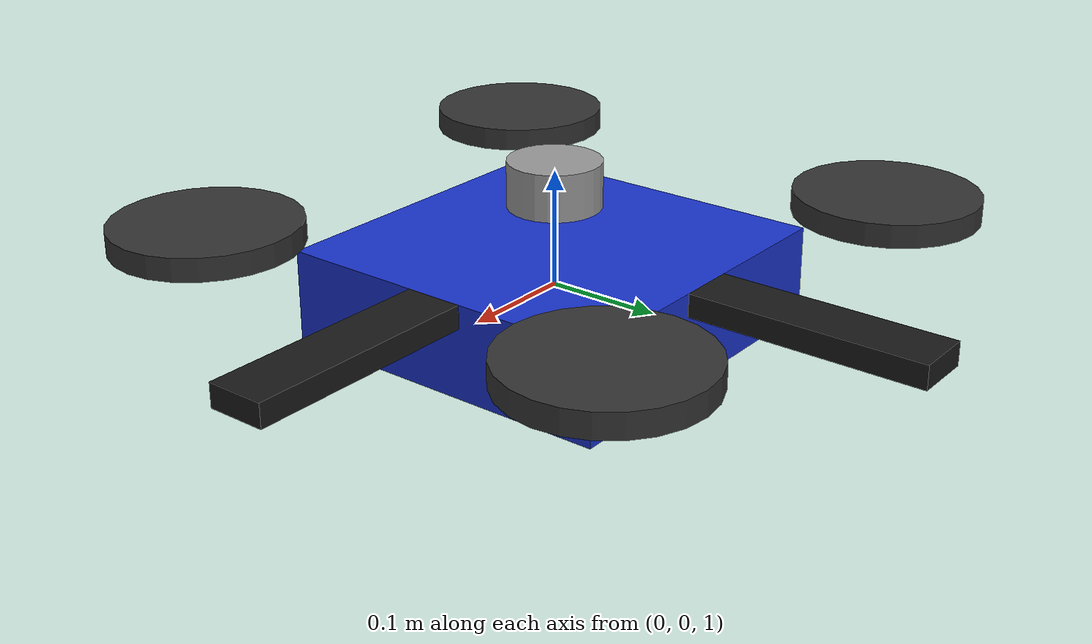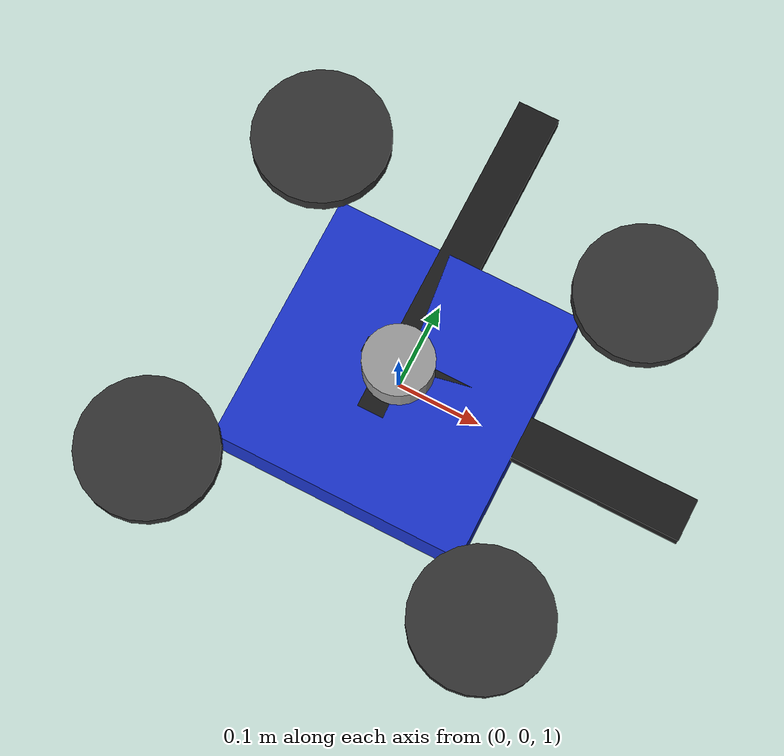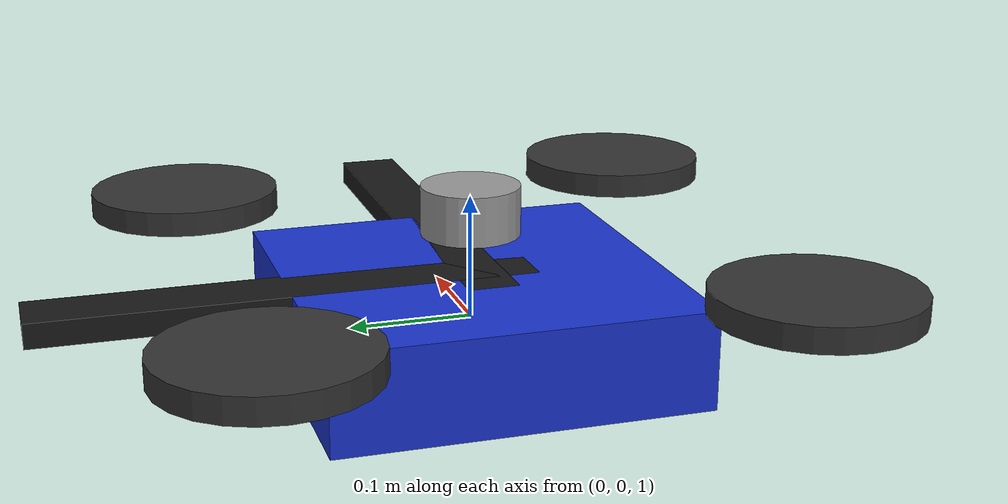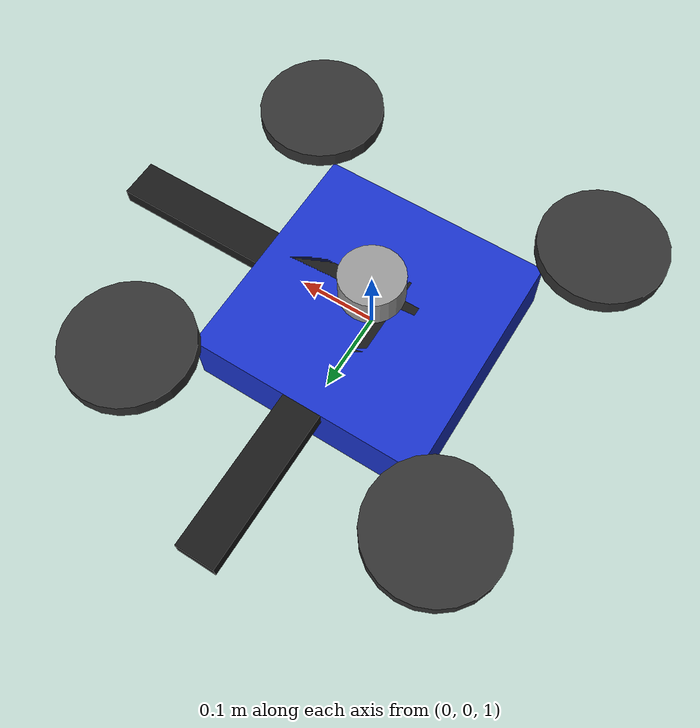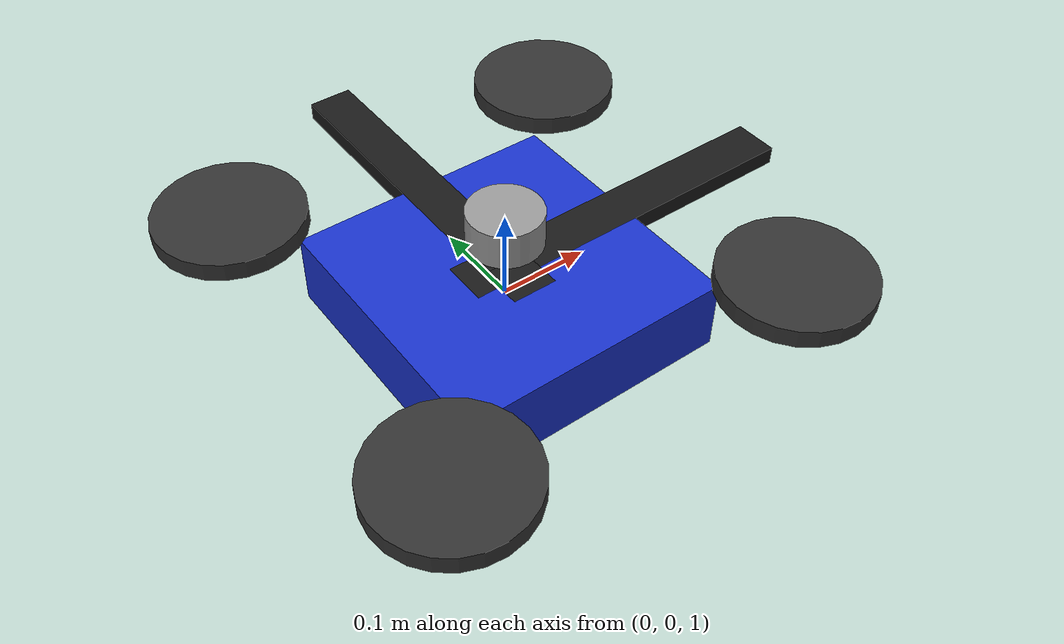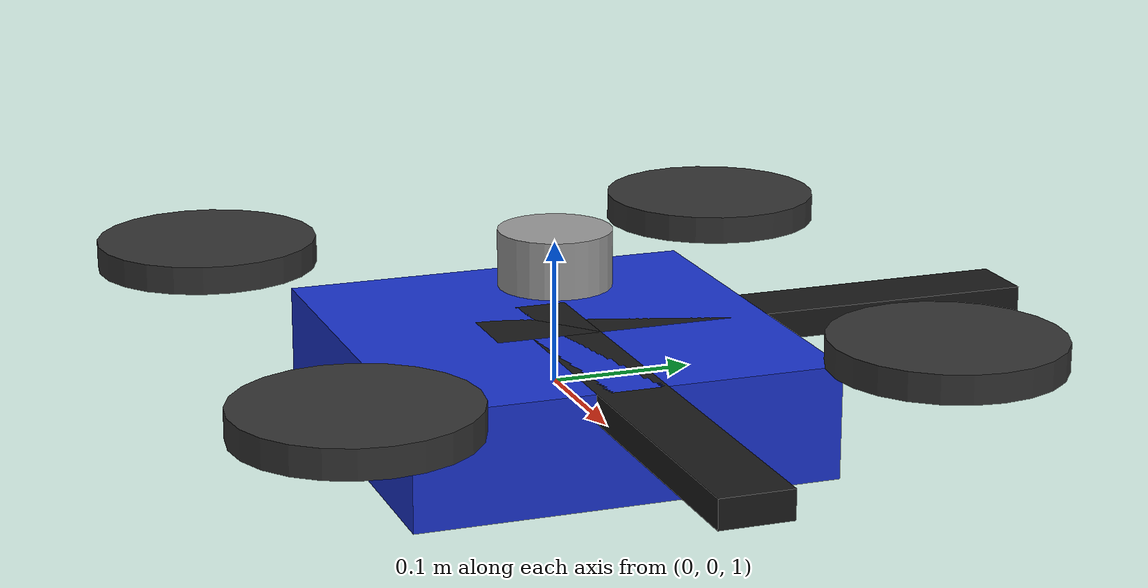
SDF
<?xml version="1.0"?>
<sdf version="1.8">
  <model name="uav">
    <pose>0 0 1 0 0 0</pose>
    <static>false</static>
    <link name="base_link">
      <gravity>false</gravity>
      <inertial>
        <mass>1.6</mass>
        <inertia>
          <ixx>0.03</ixx>
          <iyy>0.03</iyy>
          <izz>0.05</izz>
        </inertia>
      </inertial>
      <collision name="body_collision">
        <geometry>
          <box>
            <size>0.3 0.3 0.08</size>
          </box>
        </geometry>
      </collision>
      <visual name="body_visual">
        <geometry>
          <box>
            <size>0.3 0.3 0.08</size>
          </box>
        </geometry>
        <material>
          <ambient>0.1 0.2 0.8 1</ambient>
          <diffuse>0.1 0.2 0.8 1</diffuse>
        </material>
      </visual>
      <visual name="arm_front">
        <pose>0.15 0 0.03 0 0 0</pose>
        <geometry>
          <box>
            <size>0.4 0.05 0.02</size>
          </box>
        </geometry>
        <material>
          <ambient>0.1 0.1 0.1 1</ambient>
          <diffuse>0.1 0.1 0.1 1</diffuse>
        </material>
      </visual>
      <visual name="arm_side">
        <pose>0 0.15 0.03 0 0 0</pose>
        <geometry>
          <box>
            <size>0.05 0.4 0.02</size>
          </box>
        </geometry>
        <material>
          <ambient>0.1 0.1 0.1 1</ambient>
          <diffuse>0.1 0.1 0.1 1</diffuse>
        </material>
      </visual>
      <visual name="rotor_fl">
        <pose>0.2 0.2 0.06 0 0 0</pose>
        <geometry>
          <cylinder>
            <radius>0.08</radius>
            <length>0.02</length>
          </cylinder>
        </geometry>
        <material>
          <ambient>0.2 0.2 0.2 1</ambient>
          <diffuse>0.2 0.2 0.2 1</diffuse>
        </material>
      </visual>
      <visual name="rotor_fr">
        <pose>0.2 -0.2 0.06 0 0 0</pose>
        <geometry>
          <cylinder>
            <radius>0.08</radius>
            <length>0.02</length>
          </cylinder>
        </geometry>
        <material>
          <ambient>0.2 0.2 0.2 1</ambient>
          <diffuse>0.2 0.2 0.2 1</diffuse>
        </material>
      </visual>
      <visual name="rotor_rl">
        <pose>-0.2 0.2 0.06 0 0 0</pose>
        <geometry>
          <cylinder>
            <radius>0.08</radius>
            <length>0.02</length>
          </cylinder>
        </geometry>
        <material>
          <ambient>0.2 0.2 0.2 1</ambient>
          <diffuse>0.2 0.2 0.2 1</diffuse>
        </material>
      </visual>
      <visual name="rotor_rr">
        <pose>-0.2 -0.2 0.06 0 0 0</pose>
        <geometry>
          <cylinder>
            <radius>0.08</radius>
            <length>0.02</length>
          </cylinder>
        </geometry>
        <material>
          <ambient>0.2 0.2 0.2 1</ambient>
          <diffuse>0.2 0.2 0.2 1</diffuse>
        </material>
      </visual>
      <sensor name="imu" type="imu">
        <pose>0 0 0 0 0 0</pose>
        <topic>/imu</topic>
        <update_rate>100</update_rate>
      </sensor>
    </link>

    <link name="lidar_link">
      <pose>0 0 0.09 0 0 0</pose>
      <inertial>
        <mass>0.1</mass>
        <inertia>
          <ixx>0.001</ixx>
          <iyy>0.001</iyy>
          <izz>0.001</izz>
        </inertia>
      </inertial>
      <visual name="lidar_visual">
        <geometry>
          <cylinder>
            <radius>0.04</radius>
            <length>0.04</length>
          </cylinder>
        </geometry>
        <material>
          <ambient>0.6 0.6 0.6 1</ambient>
          <diffuse>0.6 0.6 0.6 1</diffuse>
        </material>
      </visual>
      <sensor name="lidar" type="gpu_lidar">
        <pose>0 0 0 0 0 0</pose>
        <topic>/scan</topic>
        <update_rate>10</update_rate>
        <lidar>
          <scan>
            <horizontal>
              <samples>720</samples>
              <resolution>1</resolution>
              <min_angle>-1.5708</min_angle>
              <max_angle>1.5708</max_angle>
            </horizontal>
          </scan>
          <range>
            <min>0.1</min>
            <max>8.0</max>
            <resolution>0.01</resolution>
          </range>
        </lidar>
      </sensor>
    </link>

    <joint name="lidar_joint" type="fixed">
      <parent>base_link</parent>
      <child>lidar_link</child>
    </joint>

    <plugin filename="libcmd_vel_plugin.so" name="uav_tunnel_gz::CmdVelPlugin">
      <topic>/cmd_vel</topic>
      <link_name>base_link</link_name>
    </plugin>
  </model>
</sdf>
